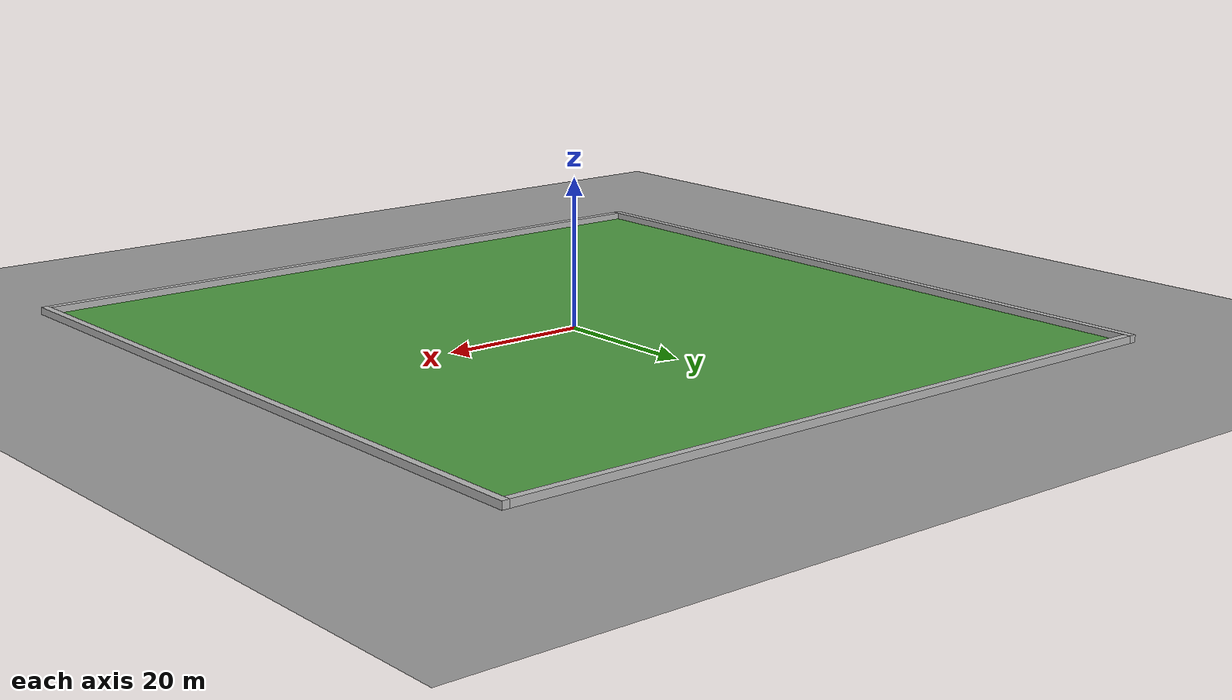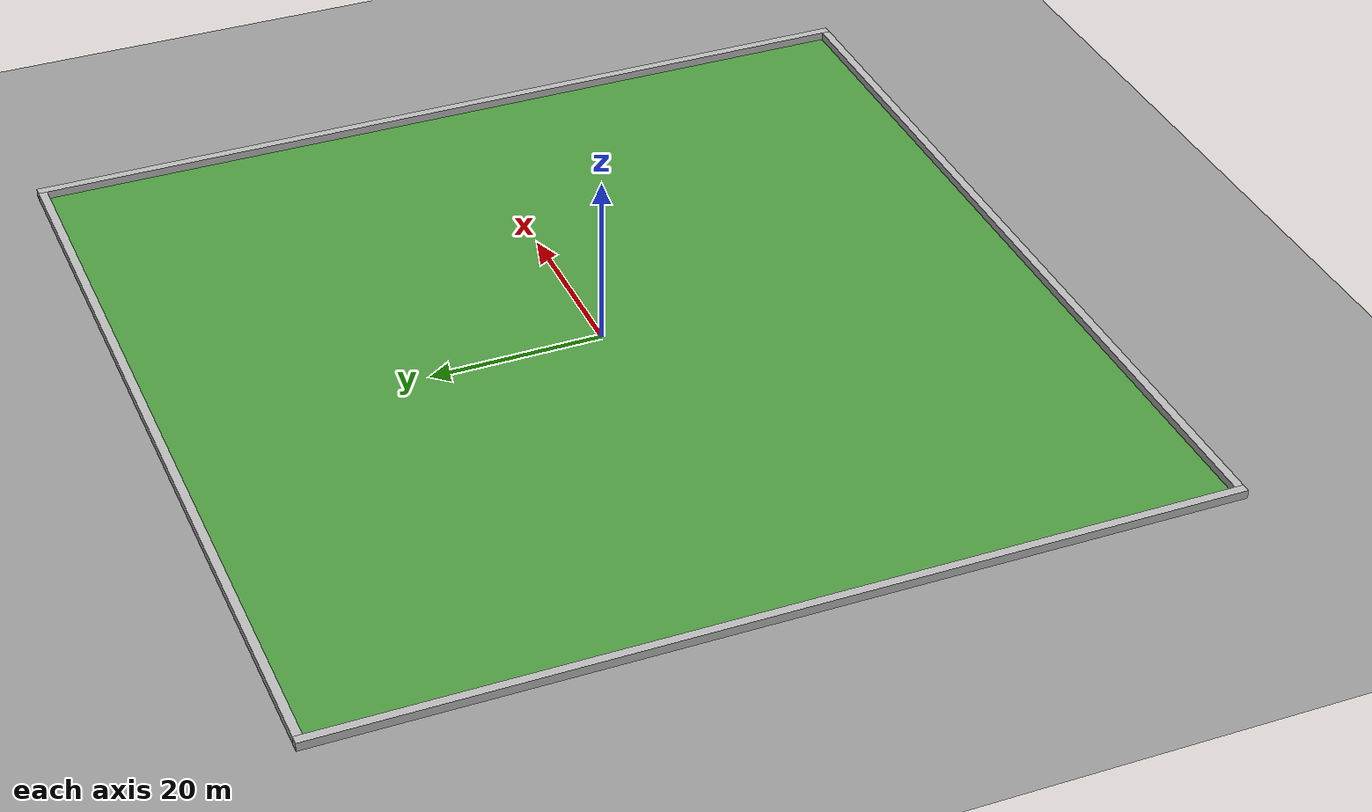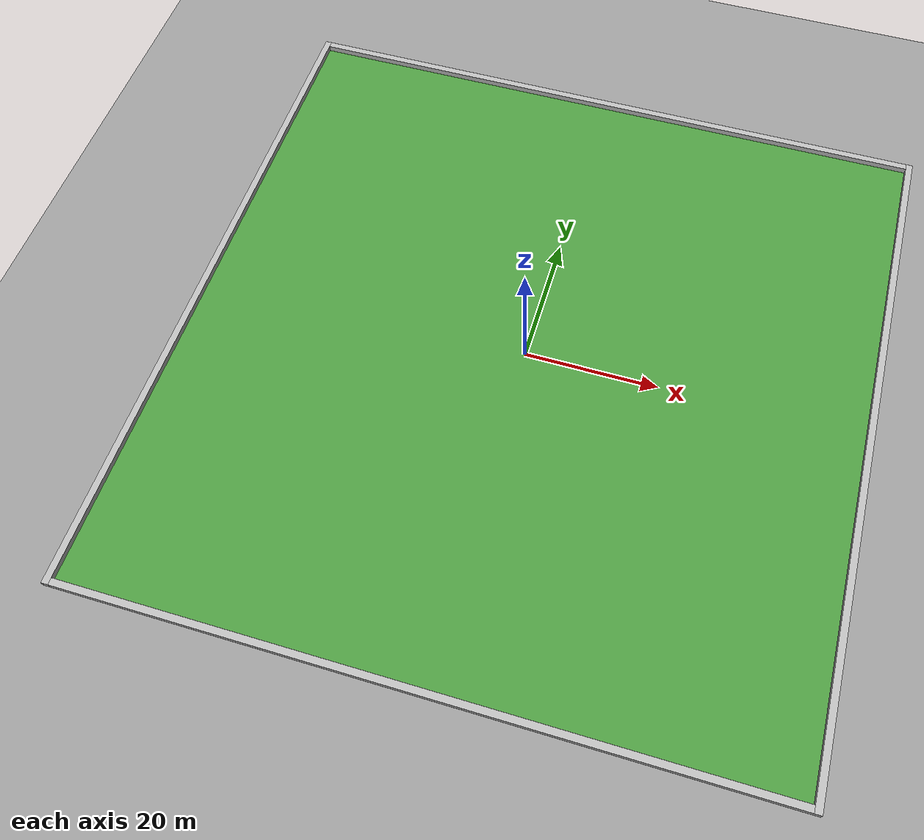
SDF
<?xml version="1.0" ?>
<sdf version="1.5">
  <world name="default">
    <!-- A global light source -->
    <include>
      <uri>model://sun</uri>
    </include>
    <!-- A ground plane -->
    <include>
      <uri>model://trajectory_ground_plane</uri>
    </include>
    <include>
      <uri>model://trajectory_grass_plane</uri>
    </include>
    <include>
      <name>Border</name>
      <uri>model://trajectory_border</uri>
    </include>
    <physics name='default_physics' default='0' type='ode'>
      <gravity>0 0 -9.8066</gravity>
      <ode>
        <solver>
          <type>quick</type>
          <iters>10</iters>
          <sor>1.3</sor>
          <use_dynamic_moi_rescaling>0</use_dynamic_moi_rescaling>
        </solver>
        <constraints>
          <cfm>0</cfm>
          <erp>0.2</erp>
          <contact_max_correcting_vel>100</contact_max_correcting_vel>
          <contact_surface_layer>0.001</contact_surface_layer>
        </constraints>
      </ode>
      <max_step_size>0.004</max_step_size>
      <real_time_factor>1</real_time_factor>
      <real_time_update_rate>250</real_time_update_rate>
      <magnetic_field>6.0e-6 2.3e-5 -4.2e-5</magnetic_field>
    </physics>
    <gui fullscreen='0'>
      <camera name='user_camera'>
        <pose frame=''>61.7072 -61.0475 11.4763 0 0.275643 2.35619</pose>
        <view_controller>orbit</view_controller>
        <projection_type>perspective</projection_type>
      </camera>
    </gui>
  </world>
</sdf>

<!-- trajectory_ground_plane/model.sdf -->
<sdf version="1.5">
  <model name="trajectory_ground_plane">
    <static>true</static>
    <link name="link">
      <collision name="collision">
        <geometry>
          <plane>
            <normal>0 0 1</normal>
            <size>100 100</size>
          </plane>
        </geometry>
        <surface>
          <friction>
            <ode>
              <mu>100</mu>
              <mu2>50</mu2>
            </ode>
          </friction>
        </surface>
      </collision>
      <visual name="visual">
        <cast_shadows>false</cast_shadows>
        <geometry>
          <plane>
            <normal>0 0 1</normal>
            <size>100 100</size>
          </plane>
        </geometry>
        <material>
          <script>
            <uri>file://media/materials/scripts/gazebo.material</uri>
            <name>Gazebo/Grey</name>
          </script>
        </material>
      </visual>
    </link>
  </model>
</sdf>

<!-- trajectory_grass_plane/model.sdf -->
<sdf version="1.5">
  <model name="asphalt_plane">
    <static>true</static>
    <link name="link">
      <collision name="collision">
        <geometry>
          <box>
            <size>100 100 .1</size>
          </box>
        </geometry>
      </collision>
      <visual name="visual">
        <cast_shadows>false</cast_shadows>
        <geometry>
          <box>
            <size>100 100 .1</size>
          </box>
        </geometry>
        <material>
          <script>
            <uri>model://trajectory_grass_plane/materials/scripts</uri>
            <uri>model://trajectory_grass_plane/materials/textures</uri>
            <name>vrc/grass</name>
          </script>
        </material>
      </visual>
    </link>
  </model>
</sdf>

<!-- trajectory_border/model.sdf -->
<sdf version="1.5">
  <model name="trajectory border">
    <pose>0 0 0.5 0 0 0</pose>
    <static>true</static>
    <link name="linkX0Y50">
      <collision name="collision">
        <geometry>
          <box>
            <size>100 1 1</size>
          </box>
        </geometry>
      </collision>
      <visual name="visual">
        <pose>0 50.5 0 0 0 0</pose>
        <geometry>
          <box>
            <size>100 1 1</size>
          </box>
        </geometry>
      </visual>
    </link>
    <link name="linkX0Y-50">
      <collision name="collision">
        <geometry>
          <box>
            <size>100 1 1</size>
          </box>
        </geometry>
      </collision>
      <visual name="visual">
        <pose>0 -50.5 0 0 0 0</pose>
        <geometry>
          <box>
            <size>100 1 1</size>
          </box>
        </geometry>
      </visual>
    </link><static>true</static>
    <link name="linkX50Y0">
      <collision name="collision">
        <geometry>
          <box>
            <size>1 102 1</size>
          </box>
        </geometry>
      </collision>
      <visual name="visual">
        <pose>50.5 0 0 0 0 0</pose>
        <geometry>
          <box>
            <size>1 102 1</size>
          </box>
        </geometry>
      </visual>
    </link>
    <link name="linkX-50Y0">
      <collision name="collision">
        <geometry>
          <box>
            <size>1 102 1</size>
          </box>
        </geometry>
      </collision>
      <visual name="visual">
        <pose>-50.5 0 0 0 0 0</pose>
        <geometry>
          <box>
            <size>1 102 1</size>
          </box>
        </geometry>
      </visual>
    </link>
  </model>
</sdf>
